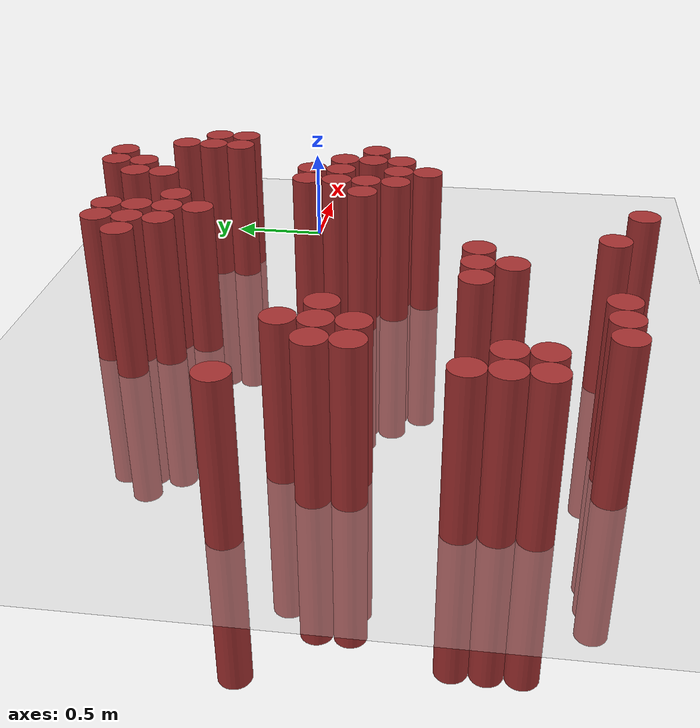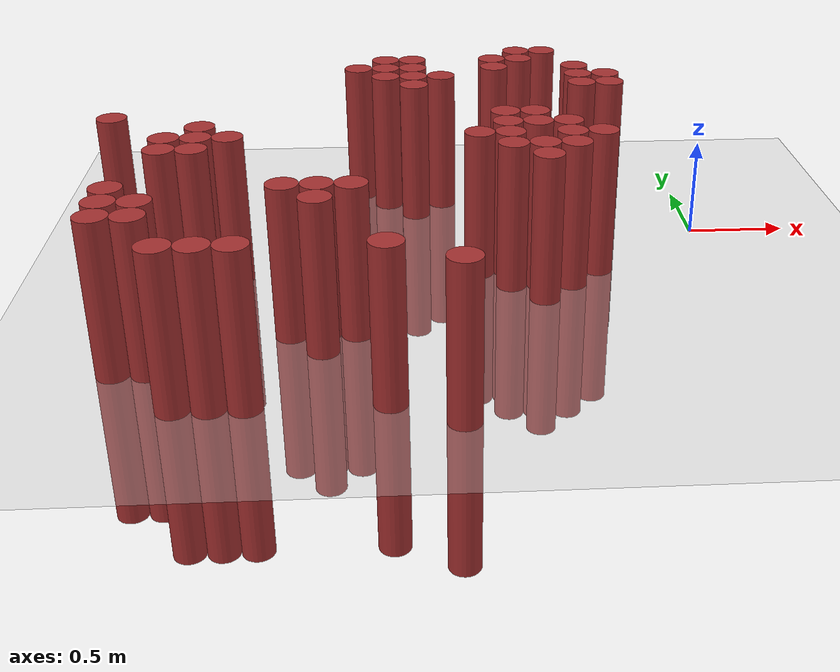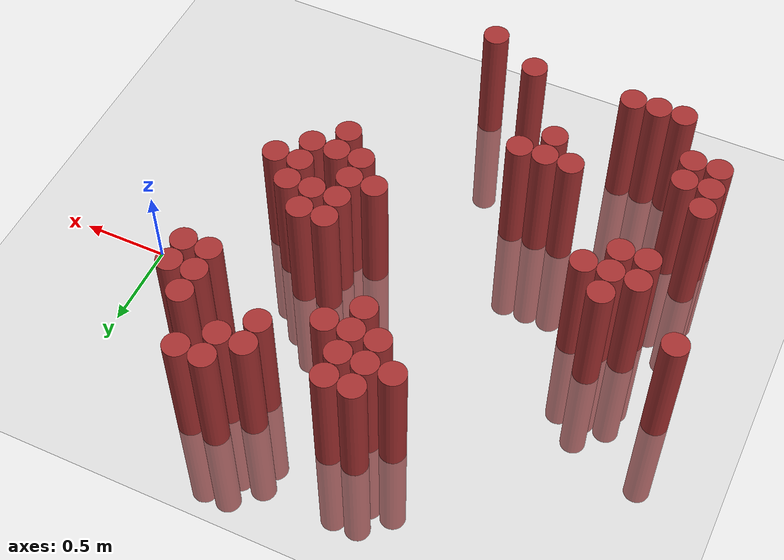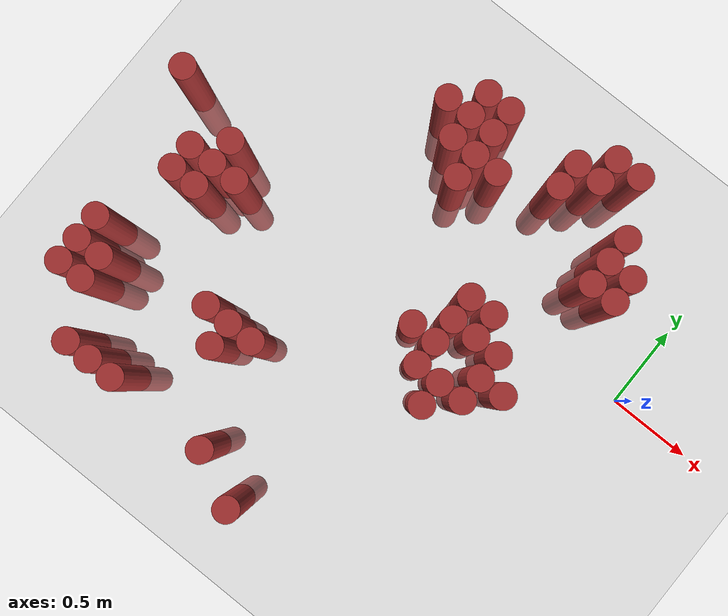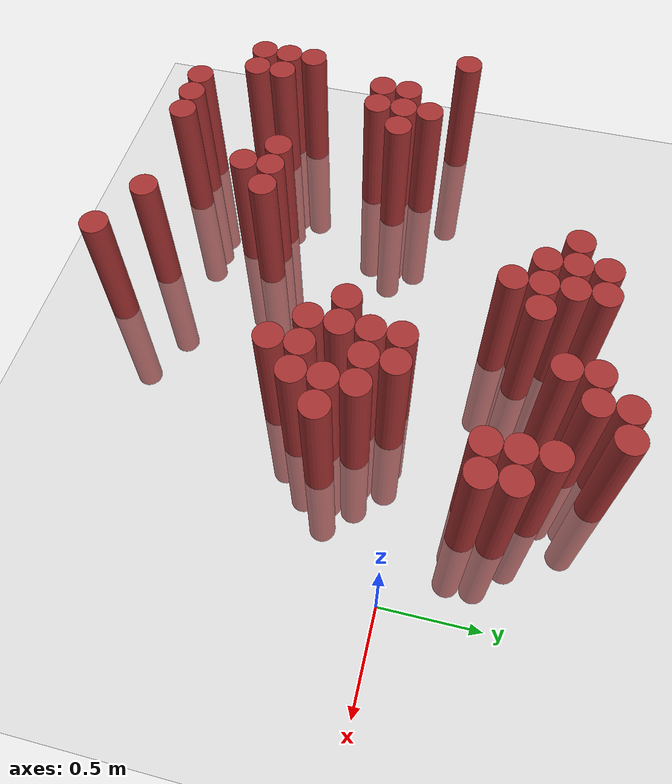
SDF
<sdf version="1.6">
 <world name="default">
  <model name="ground_plane">
   <static>1</static>
   <link name="link">
    <collision name="collision">
     <geometry><plane><normal>0 0 1</normal><size>100 100</size></plane></geometry>
     <surface><friction><ode><mu>100</mu><mu2>50</mu2></ode></friction></surface>
    </collision>
    <visual name="visual">
     <cast_shadows>0</cast_shadows>
     <geometry><plane><normal>0 0 1</normal><size>100 100</size></plane></geometry>
     <material>
      <script><uri>file://media/materials/scripts/gazebo.material</uri><name>Gazebo/Grey</name></script>
     </material>
    </visual>
   </link>
  </model>
  <model name="unit_cylinder_296">
   <static>1</static>
   <pose>-2.975000 -0.125000 0.000000 0.000000 0.000000 0.000000</pose>
   <link name="link">
    <inertial>
     <mass>1</mass>
     <inertia><ixx>0.145833</ixx><ixy>0</ixy><ixz>0</ixz><iyy>0.145833</iyy><iyz>0</iyz><izz>0.125</izz></inertia>
    </inertial>
    <collision name="collision">
     <geometry><cylinder><radius>0.075000</radius><length>1.5</length></cylinder></geometry>
    </collision>
    <visual name="visual">
     <geometry><cylinder><radius>0.075000</radius><length>1.5</length></cylinder></geometry>
     <material>
      <ambient>0.648000 0.192000 0.192000 1</ambient>
      <diffuse>0.648000 0.192000 0.192000 1</diffuse>
     </material>
     <material>
      <script><name>Gazebo/Grey</name><uri>file://media/materials/scripts/gazebo.material</uri></script>
     </material>
    </visual>
   </link>
  </model>
  <model name="unit_cylinder_299">
   <static>1</static>
   <pose>-2.825000 -1.325000 0.000000 0.000000 0.000000 0.000000</pose>
   <link name="link">
    <inertial>
     <mass>1</mass>
     <inertia><ixx>0.145833</ixx><ixy>0</ixy><ixz>0</ixz><iyy>0.145833</iyy><iyz>0</iyz><izz>0.125</izz></inertia>
    </inertial>
    <collision name="collision">
     <geometry><cylinder><radius>0.075000</radius><length>1.5</length></cylinder></geometry>
    </collision>
    <visual name="visual">
     <geometry><cylinder><radius>0.075000</radius><length>1.5</length></cylinder></geometry>
     <material>
      <ambient>0.648000 0.192000 0.192000 1</ambient>
      <diffuse>0.648000 0.192000 0.192000 1</diffuse>
     </material>
     <material>
      <script><name>Gazebo/Grey</name><uri>file://media/materials/scripts/gazebo.material</uri></script>
     </material>
    </visual>
   </link>
  </model>
  <model name="unit_cylinder_300">
   <static>1</static>
   <pose>-2.825000 -1.175000 0.000000 0.000000 0.000000 0.000000</pose>
   <link name="link">
    <inertial>
     <mass>1</mass>
     <inertia><ixx>0.145833</ixx><ixy>0</ixy><ixz>0</ixz><iyy>0.145833</iyy><iyz>0</iyz><izz>0.125</izz></inertia>
    </inertial>
    <collision name="collision">
     <geometry><cylinder><radius>0.075000</radius><length>1.5</length></cylinder></geometry>
    </collision>
    <visual name="visual">
     <geometry><cylinder><radius>0.075000</radius><length>1.5</length></cylinder></geometry>
     <material>
      <ambient>0.648000 0.192000 0.192000 1</ambient>
      <diffuse>0.648000 0.192000 0.192000 1</diffuse>
     </material>
     <material>
      <script><name>Gazebo/Grey</name><uri>file://media/materials/scripts/gazebo.material</uri></script>
     </material>
    </visual>
   </link>
  </model>
  <model name="unit_cylinder_301">
   <static>1</static>
   <pose>-2.825000 -1.025000 0.000000 0.000000 0.000000 0.000000</pose>
   <link name="link">
    <inertial>
     <mass>1</mass>
     <inertia><ixx>0.145833</ixx><ixy>0</ixy><ixz>0</ixz><iyy>0.145833</iyy><iyz>0</iyz><izz>0.125</izz></inertia>
    </inertial>
    <collision name="collision">
     <geometry><cylinder><radius>0.075000</radius><length>1.5</length></cylinder></geometry>
    </collision>
    <visual name="visual">
     <geometry><cylinder><radius>0.075000</radius><length>1.5</length></cylinder></geometry>
     <material>
      <ambient>0.648000 0.192000 0.192000 1</ambient>
      <diffuse>0.648000 0.192000 0.192000 1</diffuse>
     </material>
     <material>
      <script><name>Gazebo/Grey</name><uri>file://media/materials/scripts/gazebo.material</uri></script>
     </material>
    </visual>
   </link>
  </model>
  <model name="unit_cylinder_305">
   <static>1</static>
   <pose>-2.675000 -1.325000 0.000000 0.000000 0.000000 0.000000</pose>
   <link name="link">
    <inertial>
     <mass>1</mass>
     <inertia><ixx>0.145833</ixx><ixy>0</ixy><ixz>0</ixz><iyy>0.145833</iyy><iyz>0</iyz><izz>0.125</izz></inertia>
    </inertial>
    <collision name="collision">
     <geometry><cylinder><radius>0.075000</radius><length>1.5</length></cylinder></geometry>
    </collision>
    <visual name="visual">
     <geometry><cylinder><radius>0.075000</radius><length>1.5</length></cylinder></geometry>
     <material>
      <ambient>0.648000 0.192000 0.192000 1</ambient>
      <diffuse>0.648000 0.192000 0.192000 1</diffuse>
     </material>
     <material>
      <script><name>Gazebo/Grey</name><uri>file://media/materials/scripts/gazebo.material</uri></script>
     </material>
    </visual>
   </link>
  </model>
  <model name="unit_cylinder_306">
   <static>1</static>
   <pose>-2.675000 -1.175000 0.000000 0.000000 0.000000 0.000000</pose>
   <link name="link">
    <inertial>
     <mass>1</mass>
     <inertia><ixx>0.145833</ixx><ixy>0</ixy><ixz>0</ixz><iyy>0.145833</iyy><iyz>0</iyz><izz>0.125</izz></inertia>
    </inertial>
    <collision name="collision">
     <geometry><cylinder><radius>0.075000</radius><length>1.5</length></cylinder></geometry>
    </collision>
    <visual name="visual">
     <geometry><cylinder><radius>0.075000</radius><length>1.5</length></cylinder></geometry>
     <material>
      <ambient>0.648000 0.192000 0.192000 1</ambient>
      <diffuse>0.648000 0.192000 0.192000 1</diffuse>
     </material>
     <material>
      <script><name>Gazebo/Grey</name><uri>file://media/materials/scripts/gazebo.material</uri></script>
     </material>
    </visual>
   </link>
  </model>
  <model name="unit_cylinder_307">
   <static>1</static>
   <pose>-2.675000 -0.575000 0.000000 0.000000 0.000000 0.000000</pose>
   <link name="link">
    <inertial>
     <mass>1</mass>
     <inertia><ixx>0.145833</ixx><ixy>0</ixy><ixz>0</ixz><iyy>0.145833</iyy><iyz>0</iyz><izz>0.125</izz></inertia>
    </inertial>
    <collision name="collision">
     <geometry><cylinder><radius>0.075000</radius><length>1.5</length></cylinder></geometry>
    </collision>
    <visual name="visual">
     <geometry><cylinder><radius>0.075000</radius><length>1.5</length></cylinder></geometry>
     <material>
      <ambient>0.648000 0.192000 0.192000 1</ambient>
      <diffuse>0.648000 0.192000 0.192000 1</diffuse>
     </material>
     <material>
      <script><name>Gazebo/Grey</name><uri>file://media/materials/scripts/gazebo.material</uri></script>
     </material>
    </visual>
   </link>
  </model>
  <model name="unit_cylinder_308">
   <static>1</static>
   <pose>-2.675000 -0.425000 0.000000 0.000000 0.000000 0.000000</pose>
   <link name="link">
    <inertial>
     <mass>1</mass>
     <inertia><ixx>0.145833</ixx><ixy>0</ixy><ixz>0</ixz><iyy>0.145833</iyy><iyz>0</iyz><izz>0.125</izz></inertia>
    </inertial>
    <collision name="collision">
     <geometry><cylinder><radius>0.075000</radius><length>1.5</length></cylinder></geometry>
    </collision>
    <visual name="visual">
     <geometry><cylinder><radius>0.075000</radius><length>1.5</length></cylinder></geometry>
     <material>
      <ambient>0.648000 0.192000 0.192000 1</ambient>
      <diffuse>0.648000 0.192000 0.192000 1</diffuse>
     </material>
     <material>
      <script><name>Gazebo/Grey</name><uri>file://media/materials/scripts/gazebo.material</uri></script>
     </material>
    </visual>
   </link>
  </model>
  <model name="unit_cylinder_317">
   <static>1</static>
   <pose>-2.525000 -1.625000 0.000000 0.000000 0.000000 0.000000</pose>
   <link name="link">
    <inertial>
     <mass>1</mass>
     <inertia><ixx>0.145833</ixx><ixy>0</ixy><ixz>0</ixz><iyy>0.145833</iyy><iyz>0</iyz><izz>0.125</izz></inertia>
    </inertial>
    <collision name="collision">
     <geometry><cylinder><radius>0.075000</radius><length>1.5</length></cylinder></geometry>
    </collision>
    <visual name="visual">
     <geometry><cylinder><radius>0.075000</radius><length>1.5</length></cylinder></geometry>
     <material>
      <ambient>0.648000 0.192000 0.192000 1</ambient>
      <diffuse>0.648000 0.192000 0.192000 1</diffuse>
     </material>
     <material>
      <script><name>Gazebo/Grey</name><uri>file://media/materials/scripts/gazebo.material</uri></script>
     </material>
    </visual>
   </link>
  </model>
  <model name="unit_cylinder_318">
   <static>1</static>
   <pose>-2.525000 -0.575000 0.000000 0.000000 0.000000 0.000000</pose>
   <link name="link">
    <inertial>
     <mass>1</mass>
     <inertia><ixx>0.145833</ixx><ixy>0</ixy><ixz>0</ixz><iyy>0.145833</iyy><iyz>0</iyz><izz>0.125</izz></inertia>
    </inertial>
    <collision name="collision">
     <geometry><cylinder><radius>0.075000</radius><length>1.5</length></cylinder></geometry>
    </collision>
    <visual name="visual">
     <geometry><cylinder><radius>0.075000</radius><length>1.5</length></cylinder></geometry>
     <material>
      <ambient>0.648000 0.192000 0.192000 1</ambient>
      <diffuse>0.648000 0.192000 0.192000 1</diffuse>
     </material>
     <material>
      <script><name>Gazebo/Grey</name><uri>file://media/materials/scripts/gazebo.material</uri></script>
     </material>
    </visual>
   </link>
  </model>
  <model name="unit_cylinder_319">
   <static>1</static>
   <pose>-2.525000 -0.425000 0.000000 0.000000 0.000000 0.000000</pose>
   <link name="link">
    <inertial>
     <mass>1</mass>
     <inertia><ixx>0.145833</ixx><ixy>0</ixy><ixz>0</ixz><iyy>0.145833</iyy><iyz>0</iyz><izz>0.125</izz></inertia>
    </inertial>
    <collision name="collision">
     <geometry><cylinder><radius>0.075000</radius><length>1.5</length></cylinder></geometry>
    </collision>
    <visual name="visual">
     <geometry><cylinder><radius>0.075000</radius><length>1.5</length></cylinder></geometry>
     <material>
      <ambient>0.648000 0.192000 0.192000 1</ambient>
      <diffuse>0.648000 0.192000 0.192000 1</diffuse>
     </material>
     <material>
      <script><name>Gazebo/Grey</name><uri>file://media/materials/scripts/gazebo.material</uri></script>
     </material>
    </visual>
   </link>
  </model>
  <model name="unit_cylinder_320">
   <static>1</static>
   <pose>-2.525000 -0.275000 0.000000 0.000000 0.000000 0.000000</pose>
   <link name="link">
    <inertial>
     <mass>1</mass>
     <inertia><ixx>0.145833</ixx><ixy>0</ixy><ixz>0</ixz><iyy>0.145833</iyy><iyz>0</iyz><izz>0.125</izz></inertia>
    </inertial>
    <collision name="collision">
     <geometry><cylinder><radius>0.075000</radius><length>1.5</length></cylinder></geometry>
    </collision>
    <visual name="visual">
     <geometry><cylinder><radius>0.075000</radius><length>1.5</length></cylinder></geometry>
     <material>
      <ambient>0.648000 0.192000 0.192000 1</ambient>
      <diffuse>0.648000 0.192000 0.192000 1</diffuse>
     </material>
     <material>
      <script><name>Gazebo/Grey</name><uri>file://media/materials/scripts/gazebo.material</uri></script>
     </material>
    </visual>
   </link>
  </model>
  <model name="unit_cylinder_329">
   <static>1</static>
   <pose>-2.375000 -1.625000 0.000000 0.000000 0.000000 0.000000</pose>
   <link name="link">
    <inertial>
     <mass>1</mass>
     <inertia><ixx>0.145833</ixx><ixy>0</ixy><ixz>0</ixz><iyy>0.145833</iyy><iyz>0</iyz><izz>0.125</izz></inertia>
    </inertial>
    <collision name="collision">
     <geometry><cylinder><radius>0.075000</radius><length>1.5</length></cylinder></geometry>
    </collision>
    <visual name="visual">
     <geometry><cylinder><radius>0.075000</radius><length>1.5</length></cylinder></geometry>
     <material>
      <ambient>0.648000 0.192000 0.192000 1</ambient>
      <diffuse>0.648000 0.192000 0.192000 1</diffuse>
     </material>
     <material>
      <script><name>Gazebo/Grey</name><uri>file://media/materials/scripts/gazebo.material</uri></script>
     </material>
    </visual>
   </link>
  </model>
  <model name="unit_cylinder_330">
   <static>1</static>
   <pose>-2.375000 -0.425000 0.000000 0.000000 0.000000 0.000000</pose>
   <link name="link">
    <inertial>
     <mass>1</mass>
     <inertia><ixx>0.145833</ixx><ixy>0</ixy><ixz>0</ixz><iyy>0.145833</iyy><iyz>0</iyz><izz>0.125</izz></inertia>
    </inertial>
    <collision name="collision">
     <geometry><cylinder><radius>0.075000</radius><length>1.5</length></cylinder></geometry>
    </collision>
    <visual name="visual">
     <geometry><cylinder><radius>0.075000</radius><length>1.5</length></cylinder></geometry>
     <material>
      <ambient>0.648000 0.192000 0.192000 1</ambient>
      <diffuse>0.648000 0.192000 0.192000 1</diffuse>
     </material>
     <material>
      <script><name>Gazebo/Grey</name><uri>file://media/materials/scripts/gazebo.material</uri></script>
     </material>
    </visual>
   </link>
  </model>
  <model name="unit_cylinder_338">
   <static>1</static>
   <pose>-2.225000 -1.625000 0.000000 0.000000 0.000000 0.000000</pose>
   <link name="link">
    <inertial>
     <mass>1</mass>
     <inertia><ixx>0.145833</ixx><ixy>0</ixy><ixz>0</ixz><iyy>0.145833</iyy><iyz>0</iyz><izz>0.125</izz></inertia>
    </inertial>
    <collision name="collision">
     <geometry><cylinder><radius>0.075000</radius><length>1.5</length></cylinder></geometry>
    </collision>
    <visual name="visual">
     <geometry><cylinder><radius>0.075000</radius><length>1.5</length></cylinder></geometry>
     <material>
      <ambient>0.648000 0.192000 0.192000 1</ambient>
      <diffuse>0.648000 0.192000 0.192000 1</diffuse>
     </material>
     <material>
      <script><name>Gazebo/Grey</name><uri>file://media/materials/scripts/gazebo.material</uri></script>
     </material>
    </visual>
   </link>
  </model>
  <model name="unit_cylinder_341">
   <static>1</static>
   <pose>-2.075000 -1.025000 0.000000 0.000000 0.000000 0.000000</pose>
   <link name="link">
    <inertial>
     <mass>1</mass>
     <inertia><ixx>0.145833</ixx><ixy>0</ixy><ixz>0</ixz><iyy>0.145833</iyy><iyz>0</iyz><izz>0.125</izz></inertia>
    </inertial>
    <collision name="collision">
     <geometry><cylinder><radius>0.075000</radius><length>1.5</length></cylinder></geometry>
    </collision>
    <visual name="visual">
     <geometry><cylinder><radius>0.075000</radius><length>1.5</length></cylinder></geometry>
     <material>
      <ambient>0.648000 0.192000 0.192000 1</ambient>
      <diffuse>0.648000 0.192000 0.192000 1</diffuse>
     </material>
     <material>
      <script><name>Gazebo/Grey</name><uri>file://media/materials/scripts/gazebo.material</uri></script>
     </material>
    </visual>
   </link>
  </model>
  <model name="unit_cylinder_343">
   <static>1</static>
   <pose>-1.925000 -1.175000 0.000000 0.000000 0.000000 0.000000</pose>
   <link name="link">
    <inertial>
     <mass>1</mass>
     <inertia><ixx>0.145833</ixx><ixy>0</ixy><ixz>0</ixz><iyy>0.145833</iyy><iyz>0</iyz><izz>0.125</izz></inertia>
    </inertial>
    <collision name="collision">
     <geometry><cylinder><radius>0.075000</radius><length>1.5</length></cylinder></geometry>
    </collision>
    <visual name="visual">
     <geometry><cylinder><radius>0.075000</radius><length>1.5</length></cylinder></geometry>
     <material>
      <ambient>0.648000 0.192000 0.192000 1</ambient>
      <diffuse>0.648000 0.192000 0.192000 1</diffuse>
     </material>
     <material>
      <script><name>Gazebo/Grey</name><uri>file://media/materials/scripts/gazebo.material</uri></script>
     </material>
    </visual>
   </link>
  </model>
  <model name="unit_cylinder_344">
   <static>1</static>
   <pose>-1.925000 -1.025000 0.000000 0.000000 0.000000 0.000000</pose>
   <link name="link">
    <inertial>
     <mass>1</mass>
     <inertia><ixx>0.145833</ixx><ixy>0</ixy><ixz>0</ixz><iyy>0.145833</iyy><iyz>0</iyz><izz>0.125</izz></inertia>
    </inertial>
    <collision name="collision">
     <geometry><cylinder><radius>0.075000</radius><length>1.5</length></cylinder></geometry>
    </collision>
    <visual name="visual">
     <geometry><cylinder><radius>0.075000</radius><length>1.5</length></cylinder></geometry>
     <material>
      <ambient>0.648000 0.192000 0.192000 1</ambient>
      <diffuse>0.648000 0.192000 0.192000 1</diffuse>
     </material>
     <material>
      <script><name>Gazebo/Grey</name><uri>file://media/materials/scripts/gazebo.material</uri></script>
     </material>
    </visual>
   </link>
  </model>
  <model name="unit_cylinder_347">
   <static>1</static>
   <pose>-1.775000 -1.025000 0.000000 0.000000 0.000000 0.000000</pose>
   <link name="link">
    <inertial>
     <mass>1</mass>
     <inertia><ixx>0.145833</ixx><ixy>0</ixy><ixz>0</ixz><iyy>0.145833</iyy><iyz>0</iyz><izz>0.125</izz></inertia>
    </inertial>
    <collision name="collision">
     <geometry><cylinder><radius>0.075000</radius><length>1.5</length></cylinder></geometry>
    </collision>
    <visual name="visual">
     <geometry><cylinder><radius>0.075000</radius><length>1.5</length></cylinder></geometry>
     <material>
      <ambient>0.648000 0.192000 0.192000 1</ambient>
      <diffuse>0.648000 0.192000 0.192000 1</diffuse>
     </material>
     <material>
      <script><name>Gazebo/Grey</name><uri>file://media/materials/scripts/gazebo.material</uri></script>
     </material>
    </visual>
   </link>
  </model>
  <model name="unit_cylinder_348">
   <static>1</static>
   <pose>-1.775000 0.625000 0.000000 0.000000 0.000000 0.000000</pose>
   <link name="link">
    <inertial>
     <mass>1</mass>
     <inertia><ixx>0.145833</ixx><ixy>0</ixy><ixz>0</ixz><iyy>0.145833</iyy><iyz>0</iyz><izz>0.125</izz></inertia>
    </inertial>
    <collision name="collision">
     <geometry><cylinder><radius>0.075000</radius><length>1.5</length></cylinder></geometry>
    </collision>
    <visual name="visual">
     <geometry><cylinder><radius>0.075000</radius><length>1.5</length></cylinder></geometry>
     <material>
      <ambient>0.648000 0.192000 0.192000 1</ambient>
      <diffuse>0.648000 0.192000 0.192000 1</diffuse>
     </material>
     <material>
      <script><name>Gazebo/Grey</name><uri>file://media/materials/scripts/gazebo.material</uri></script>
     </material>
    </visual>
   </link>
  </model>
  <model name="unit_cylinder_351">
   <static>1</static>
   <pose>-1.625000 -1.625000 0.000000 0.000000 0.000000 0.000000</pose>
   <link name="link">
    <inertial>
     <mass>1</mass>
     <inertia><ixx>0.145833</ixx><ixy>0</ixy><ixz>0</ixz><iyy>0.145833</iyy><iyz>0</iyz><izz>0.125</izz></inertia>
    </inertial>
    <collision name="collision">
     <geometry><cylinder><radius>0.075000</radius><length>1.5</length></cylinder></geometry>
    </collision>
    <visual name="visual">
     <geometry><cylinder><radius>0.075000</radius><length>1.5</length></cylinder></geometry>
     <material>
      <ambient>0.648000 0.192000 0.192000 1</ambient>
      <diffuse>0.648000 0.192000 0.192000 1</diffuse>
     </material>
     <material>
      <script><name>Gazebo/Grey</name><uri>file://media/materials/scripts/gazebo.material</uri></script>
     </material>
    </visual>
   </link>
  </model>
  <model name="unit_cylinder_352">
   <static>1</static>
   <pose>-1.625000 0.475000 0.000000 0.000000 0.000000 0.000000</pose>
   <link name="link">
    <inertial>
     <mass>1</mass>
     <inertia><ixx>0.145833</ixx><ixy>0</ixy><ixz>0</ixz><iyy>0.145833</iyy><iyz>0</iyz><izz>0.125</izz></inertia>
    </inertial>
    <collision name="collision">
     <geometry><cylinder><radius>0.075000</radius><length>1.5</length></cylinder></geometry>
    </collision>
    <visual name="visual">
     <geometry><cylinder><radius>0.075000</radius><length>1.5</length></cylinder></geometry>
     <material>
      <ambient>0.648000 0.192000 0.192000 1</ambient>
      <diffuse>0.648000 0.192000 0.192000 1</diffuse>
     </material>
     <material>
      <script><name>Gazebo/Grey</name><uri>file://media/materials/scripts/gazebo.material</uri></script>
     </material>
    </visual>
   </link>
  </model>
  <model name="unit_cylinder_353">
   <static>1</static>
   <pose>-1.625000 0.625000 0.000000 0.000000 0.000000 0.000000</pose>
   <link name="link">
    <inertial>
     <mass>1</mass>
     <inertia><ixx>0.145833</ixx><ixy>0</ixy><ixz>0</ixz><iyy>0.145833</iyy><iyz>0</iyz><izz>0.125</izz></inertia>
    </inertial>
    <collision name="collision">
     <geometry><cylinder><radius>0.075000</radius><length>1.5</length></cylinder></geometry>
    </collision>
    <visual name="visual">
     <geometry><cylinder><radius>0.075000</radius><length>1.5</length></cylinder></geometry>
     <material>
      <ambient>0.648000 0.192000 0.192000 1</ambient>
      <diffuse>0.648000 0.192000 0.192000 1</diffuse>
     </material>
     <material>
      <script><name>Gazebo/Grey</name><uri>file://media/materials/scripts/gazebo.material</uri></script>
     </material>
    </visual>
   </link>
  </model>
  <model name="unit_cylinder_354">
   <static>1</static>
   <pose>-1.625000 0.775000 0.000000 0.000000 0.000000 0.000000</pose>
   <link name="link">
    <inertial>
     <mass>1</mass>
     <inertia><ixx>0.145833</ixx><ixy>0</ixy><ixz>0</ixz><iyy>0.145833</iyy><iyz>0</iyz><izz>0.125</izz></inertia>
    </inertial>
    <collision name="collision">
     <geometry><cylinder><radius>0.075000</radius><length>1.5</length></cylinder></geometry>
    </collision>
    <visual name="visual">
     <geometry><cylinder><radius>0.075000</radius><length>1.5</length></cylinder></geometry>
     <material>
      <ambient>0.648000 0.192000 0.192000 1</ambient>
      <diffuse>0.648000 0.192000 0.192000 1</diffuse>
     </material>
     <material>
      <script><name>Gazebo/Grey</name><uri>file://media/materials/scripts/gazebo.material</uri></script>
     </material>
    </visual>
   </link>
  </model>
  <model name="unit_cylinder_361">
   <static>1</static>
   <pose>-1.475000 0.325000 0.000000 0.000000 0.000000 0.000000</pose>
   <link name="link">
    <inertial>
     <mass>1</mass>
     <inertia><ixx>0.145833</ixx><ixy>0</ixy><ixz>0</ixz><iyy>0.145833</iyy><iyz>0</iyz><izz>0.125</izz></inertia>
    </inertial>
    <collision name="collision">
     <geometry><cylinder><radius>0.075000</radius><length>1.5</length></cylinder></geometry>
    </collision>
    <visual name="visual">
     <geometry><cylinder><radius>0.075000</radius><length>1.5</length></cylinder></geometry>
     <material>
      <ambient>0.648000 0.192000 0.192000 1</ambient>
      <diffuse>0.648000 0.192000 0.192000 1</diffuse>
     </material>
     <material>
      <script><name>Gazebo/Grey</name><uri>file://media/materials/scripts/gazebo.material</uri></script>
     </material>
    </visual>
   </link>
  </model>
  <model name="unit_cylinder_362">
   <static>1</static>
   <pose>-1.475000 0.475000 0.000000 0.000000 0.000000 0.000000</pose>
   <link name="link">
    <inertial>
     <mass>1</mass>
     <inertia><ixx>0.145833</ixx><ixy>0</ixy><ixz>0</ixz><iyy>0.145833</iyy><iyz>0</iyz><izz>0.125</izz></inertia>
    </inertial>
    <collision name="collision">
     <geometry><cylinder><radius>0.075000</radius><length>1.5</length></cylinder></geometry>
    </collision>
    <visual name="visual">
     <geometry><cylinder><radius>0.075000</radius><length>1.5</length></cylinder></geometry>
     <material>
      <ambient>0.648000 0.192000 0.192000 1</ambient>
      <diffuse>0.648000 0.192000 0.192000 1</diffuse>
     </material>
     <material>
      <script><name>Gazebo/Grey</name><uri>file://media/materials/scripts/gazebo.material</uri></script>
     </material>
    </visual>
   </link>
  </model>
  <model name="unit_cylinder_363">
   <static>1</static>
   <pose>-1.475000 0.625000 0.000000 0.000000 0.000000 0.000000</pose>
   <link name="link">
    <inertial>
     <mass>1</mass>
     <inertia><ixx>0.145833</ixx><ixy>0</ixy><ixz>0</ixz><iyy>0.145833</iyy><iyz>0</iyz><izz>0.125</izz></inertia>
    </inertial>
    <collision name="collision">
     <geometry><cylinder><radius>0.075000</radius><length>1.5</length></cylinder></geometry>
    </collision>
    <visual name="visual">
     <geometry><cylinder><radius>0.075000</radius><length>1.5</length></cylinder></geometry>
     <material>
      <ambient>0.648000 0.192000 0.192000 1</ambient>
      <diffuse>0.648000 0.192000 0.192000 1</diffuse>
     </material>
     <material>
      <script><name>Gazebo/Grey</name><uri>file://media/materials/scripts/gazebo.material</uri></script>
     </material>
    </visual>
   </link>
  </model>
  <model name="unit_cylinder_364">
   <static>1</static>
   <pose>-1.475000 0.775000 0.000000 0.000000 0.000000 0.000000</pose>
   <link name="link">
    <inertial>
     <mass>1</mass>
     <inertia><ixx>0.145833</ixx><ixy>0</ixy><ixz>0</ixz><iyy>0.145833</iyy><iyz>0</iyz><izz>0.125</izz></inertia>
    </inertial>
    <collision name="collision">
     <geometry><cylinder><radius>0.075000</radius><length>1.5</length></cylinder></geometry>
    </collision>
    <visual name="visual">
     <geometry><cylinder><radius>0.075000</radius><length>1.5</length></cylinder></geometry>
     <material>
      <ambient>0.648000 0.192000 0.192000 1</ambient>
      <diffuse>0.648000 0.192000 0.192000 1</diffuse>
     </material>
     <material>
      <script><name>Gazebo/Grey</name><uri>file://media/materials/scripts/gazebo.material</uri></script>
     </material>
    </visual>
   </link>
  </model>
  <model name="unit_cylinder_372">
   <static>1</static>
   <pose>-1.325000 -1.775000 0.000000 0.000000 0.000000 0.000000</pose>
   <link name="link">
    <inertial>
     <mass>1</mass>
     <inertia><ixx>0.145833</ixx><ixy>0</ixy><ixz>0</ixz><iyy>0.145833</iyy><iyz>0</iyz><izz>0.125</izz></inertia>
    </inertial>
    <collision name="collision">
     <geometry><cylinder><radius>0.075000</radius><length>1.5</length></cylinder></geometry>
    </collision>
    <visual name="visual">
     <geometry><cylinder><radius>0.075000</radius><length>1.5</length></cylinder></geometry>
     <material>
      <ambient>0.648000 0.192000 0.192000 1</ambient>
      <diffuse>0.648000 0.192000 0.192000 1</diffuse>
     </material>
     <material>
      <script><name>Gazebo/Grey</name><uri>file://media/materials/scripts/gazebo.material</uri></script>
     </material>
    </visual>
   </link>
  </model>
  <model name="unit_cylinder_373">
   <static>1</static>
   <pose>-1.325000 0.475000 0.000000 0.000000 0.000000 0.000000</pose>
   <link name="link">
    <inertial>
     <mass>1</mass>
     <inertia><ixx>0.145833</ixx><ixy>0</ixy><ixz>0</ixz><iyy>0.145833</iyy><iyz>0</iyz><izz>0.125</izz></inertia>
    </inertial>
    <collision name="collision">
     <geometry><cylinder><radius>0.075000</radius><length>1.5</length></cylinder></geometry>
    </collision>
    <visual name="visual">
     <geometry><cylinder><radius>0.075000</radius><length>1.5</length></cylinder></geometry>
     <material>
      <ambient>0.648000 0.192000 0.192000 1</ambient>
      <diffuse>0.648000 0.192000 0.192000 1</diffuse>
     </material>
     <material>
      <script><name>Gazebo/Grey</name><uri>file://media/materials/scripts/gazebo.material</uri></script>
     </material>
    </visual>
   </link>
  </model>
  <model name="unit_cylinder_378">
   <static>1</static>
   <pose>-1.175000 -0.425000 0.000000 0.000000 0.000000 0.000000</pose>
   <link name="link">
    <inertial>
     <mass>1</mass>
     <inertia><ixx>0.145833</ixx><ixy>0</ixy><ixz>0</ixz><iyy>0.145833</iyy><iyz>0</iyz><izz>0.125</izz></inertia>
    </inertial>
    <collision name="collision">
     <geometry><cylinder><radius>0.075000</radius><length>1.5</length></cylinder></geometry>
    </collision>
    <visual name="visual">
     <geometry><cylinder><radius>0.075000</radius><length>1.5</length></cylinder></geometry>
     <material>
      <ambient>0.648000 0.192000 0.192000 1</ambient>
      <diffuse>0.648000 0.192000 0.192000 1</diffuse>
     </material>
     <material>
      <script><name>Gazebo/Grey</name><uri>file://media/materials/scripts/gazebo.material</uri></script>
     </material>
    </visual>
   </link>
  </model>
  <model name="unit_cylinder_381">
   <static>1</static>
   <pose>-1.025000 -0.575000 0.000000 0.000000 0.000000 0.000000</pose>
   <link name="link">
    <inertial>
     <mass>1</mass>
     <inertia><ixx>0.145833</ixx><ixy>0</ixy><ixz>0</ixz><iyy>0.145833</iyy><iyz>0</iyz><izz>0.125</izz></inertia>
    </inertial>
    <collision name="collision">
     <geometry><cylinder><radius>0.075000</radius><length>1.5</length></cylinder></geometry>
    </collision>
    <visual name="visual">
     <geometry><cylinder><radius>0.075000</radius><length>1.5</length></cylinder></geometry>
     <material>
      <ambient>0.648000 0.192000 0.192000 1</ambient>
      <diffuse>0.648000 0.192000 0.192000 1</diffuse>
     </material>
     <material>
      <script><name>Gazebo/Grey</name><uri>file://media/materials/scripts/gazebo.material</uri></script>
     </material>
    </visual>
   </link>
  </model>
  <model name="unit_cylinder_382">
   <static>1</static>
   <pose>-1.025000 -0.425000 0.000000 0.000000 0.000000 0.000000</pose>
   <link name="link">
    <inertial>
     <mass>1</mass>
     <inertia><ixx>0.145833</ixx><ixy>0</ixy><ixz>0</ixz><iyy>0.145833</iyy><iyz>0</iyz><izz>0.125</izz></inertia>
    </inertial>
    <collision name="collision">
     <geometry><cylinder><radius>0.075000</radius><length>1.5</length></cylinder></geometry>
    </collision>
    <visual name="visual">
     <geometry><cylinder><radius>0.075000</radius><length>1.5</length></cylinder></geometry>
     <material>
      <ambient>0.648000 0.192000 0.192000 1</ambient>
      <diffuse>0.648000 0.192000 0.192000 1</diffuse>
     </material>
     <material>
      <script><name>Gazebo/Grey</name><uri>file://media/materials/scripts/gazebo.material</uri></script>
     </material>
    </visual>
   </link>
  </model>
  <model name="unit_cylinder_383">
   <static>1</static>
   <pose>-1.025000 -0.275000 0.000000 0.000000 0.000000 0.000000</pose>
   <link name="link">
    <inertial>
     <mass>1</mass>
     <inertia><ixx>0.145833</ixx><ixy>0</ixy><ixz>0</ixz><iyy>0.145833</iyy><iyz>0</iyz><izz>0.125</izz></inertia>
    </inertial>
    <collision name="collision">
     <geometry><cylinder><radius>0.075000</radius><length>1.5</length></cylinder></geometry>
    </collision>
    <visual name="visual">
     <geometry><cylinder><radius>0.075000</radius><length>1.5</length></cylinder></geometry>
     <material>
      <ambient>0.648000 0.192000 0.192000 1</ambient>
      <diffuse>0.648000 0.192000 0.192000 1</diffuse>
     </material>
     <material>
      <script><name>Gazebo/Grey</name><uri>file://media/materials/scripts/gazebo.material</uri></script>
     </material>
    </visual>
   </link>
  </model>
  <model name="unit_cylinder_384">
   <static>1</static>
   <pose>-1.025000 -0.125000 0.000000 0.000000 0.000000 0.000000</pose>
   <link name="link">
    <inertial>
     <mass>1</mass>
     <inertia><ixx>0.145833</ixx><ixy>0</ixy><ixz>0</ixz><iyy>0.145833</iyy><iyz>0</iyz><izz>0.125</izz></inertia>
    </inertial>
    <collision name="collision">
     <geometry><cylinder><radius>0.075000</radius><length>1.5</length></cylinder></geometry>
    </collision>
    <visual name="visual">
     <geometry><cylinder><radius>0.075000</radius><length>1.5</length></cylinder></geometry>
     <material>
      <ambient>0.648000 0.192000 0.192000 1</ambient>
      <diffuse>0.648000 0.192000 0.192000 1</diffuse>
     </material>
     <material>
      <script><name>Gazebo/Grey</name><uri>file://media/materials/scripts/gazebo.material</uri></script>
     </material>
    </visual>
   </link>
  </model>
  <model name="unit_cylinder_385">
   <static>1</static>
   <pose>-1.025000 0.625000 0.000000 0.000000 0.000000 0.000000</pose>
   <link name="link">
    <inertial>
     <mass>1</mass>
     <inertia><ixx>0.145833</ixx><ixy>0</ixy><ixz>0</ixz><iyy>0.145833</iyy><iyz>0</iyz><izz>0.125</izz></inertia>
    </inertial>
    <collision name="collision">
     <geometry><cylinder><radius>0.075000</radius><length>1.5</length></cylinder></geometry>
    </collision>
    <visual name="visual">
     <geometry><cylinder><radius>0.075000</radius><length>1.5</length></cylinder></geometry>
     <material>
      <ambient>0.648000 0.192000 0.192000 1</ambient>
      <diffuse>0.648000 0.192000 0.192000 1</diffuse>
     </material>
     <material>
      <script><name>Gazebo/Grey</name><uri>file://media/materials/scripts/gazebo.material</uri></script>
     </material>
    </visual>
   </link>
  </model>
  <model name="unit_cylinder_386">
   <static>1</static>
   <pose>-1.025000 0.775000 0.000000 0.000000 0.000000 0.000000</pose>
   <link name="link">
    <inertial>
     <mass>1</mass>
     <inertia><ixx>0.145833</ixx><ixy>0</ixy><ixz>0</ixz><iyy>0.145833</iyy><iyz>0</iyz><izz>0.125</izz></inertia>
    </inertial>
    <collision name="collision">
     <geometry><cylinder><radius>0.075000</radius><length>1.5</length></cylinder></geometry>
    </collision>
    <visual name="visual">
     <geometry><cylinder><radius>0.075000</radius><length>1.5</length></cylinder></geometry>
     <material>
      <ambient>0.648000 0.192000 0.192000 1</ambient>
      <diffuse>0.648000 0.192000 0.192000 1</diffuse>
     </material>
     <material>
      <script><name>Gazebo/Grey</name><uri>file://media/materials/scripts/gazebo.material</uri></script>
     </material>
    </visual>
   </link>
  </model>
  <model name="unit_cylinder_389">
   <static>1</static>
   <pose>-0.875000 -0.725000 0.000000 0.000000 0.000000 0.000000</pose>
   <link name="link">
    <inertial>
     <mass>1</mass>
     <inertia><ixx>0.145833</ixx><ixy>0</ixy><ixz>0</ixz><iyy>0.145833</iyy><iyz>0</iyz><izz>0.125</izz></inertia>
    </inertial>
    <collision name="collision">
     <geometry><cylinder><radius>0.075000</radius><length>1.5</length></cylinder></geometry>
    </collision>
    <visual name="visual">
     <geometry><cylinder><radius>0.075000</radius><length>1.5</length></cylinder></geometry>
     <material>
      <ambient>0.648000 0.192000 0.192000 1</ambient>
      <diffuse>0.648000 0.192000 0.192000 1</diffuse>
     </material>
     <material>
      <script><name>Gazebo/Grey</name><uri>file://media/materials/scripts/gazebo.material</uri></script>
     </material>
    </visual>
   </link>
  </model>
  <model name="unit_cylinder_390">
   <static>1</static>
   <pose>-0.875000 -0.575000 0.000000 0.000000 0.000000 0.000000</pose>
   <link name="link">
    <inertial>
     <mass>1</mass>
     <inertia><ixx>0.145833</ixx><ixy>0</ixy><ixz>0</ixz><iyy>0.145833</iyy><iyz>0</iyz><izz>0.125</izz></inertia>
    </inertial>
    <collision name="collision">
     <geometry><cylinder><radius>0.075000</radius><length>1.5</length></cylinder></geometry>
    </collision>
    <visual name="visual">
     <geometry><cylinder><radius>0.075000</radius><length>1.5</length></cylinder></geometry>
     <material>
      <ambient>0.648000 0.192000 0.192000 1</ambient>
      <diffuse>0.648000 0.192000 0.192000 1</diffuse>
     </material>
     <material>
      <script><name>Gazebo/Grey</name><uri>file://media/materials/scripts/gazebo.material</uri></script>
     </material>
    </visual>
   </link>
  </model>
  <model name="unit_cylinder_391">
   <static>1</static>
   <pose>-0.875000 -0.275000 0.000000 0.000000 0.000000 0.000000</pose>
   <link name="link">
    <inertial>
     <mass>1</mass>
     <inertia><ixx>0.145833</ixx><ixy>0</ixy><ixz>0</ixz><iyy>0.145833</iyy><iyz>0</iyz><izz>0.125</izz></inertia>
    </inertial>
    <collision name="collision">
     <geometry><cylinder><radius>0.075000</radius><length>1.5</length></cylinder></geometry>
    </collision>
    <visual name="visual">
     <geometry><cylinder><radius>0.075000</radius><length>1.5</length></cylinder></geometry>
     <material>
      <ambient>0.648000 0.192000 0.192000 1</ambient>
      <diffuse>0.648000 0.192000 0.192000 1</diffuse>
     </material>
     <material>
      <script><name>Gazebo/Grey</name><uri>file://media/materials/scripts/gazebo.material</uri></script>
     </material>
    </visual>
   </link>
  </model>
  <model name="unit_cylinder_392">
   <static>1</static>
   <pose>-0.875000 -0.125000 0.000000 0.000000 0.000000 0.000000</pose>
   <link name="link">
    <inertial>
     <mass>1</mass>
     <inertia><ixx>0.145833</ixx><ixy>0</ixy><ixz>0</ixz><iyy>0.145833</iyy><iyz>0</iyz><izz>0.125</izz></inertia>
    </inertial>
    <collision name="collision">
     <geometry><cylinder><radius>0.075000</radius><length>1.5</length></cylinder></geometry>
    </collision>
    <visual name="visual">
     <geometry><cylinder><radius>0.075000</radius><length>1.5</length></cylinder></geometry>
     <material>
      <ambient>0.648000 0.192000 0.192000 1</ambient>
      <diffuse>0.648000 0.192000 0.192000 1</diffuse>
     </material>
     <material>
      <script><name>Gazebo/Grey</name><uri>file://media/materials/scripts/gazebo.material</uri></script>
     </material>
    </visual>
   </link>
  </model>
  <model name="unit_cylinder_393">
   <static>1</static>
   <pose>-0.875000 0.775000 0.000000 0.000000 0.000000 0.000000</pose>
   <link name="link">
    <inertial>
     <mass>1</mass>
     <inertia><ixx>0.145833</ixx><ixy>0</ixy><ixz>0</ixz><iyy>0.145833</iyy><iyz>0</iyz><izz>0.125</izz></inertia>
    </inertial>
    <collision name="collision">
     <geometry><cylinder><radius>0.075000</radius><length>1.5</length></cylinder></geometry>
    </collision>
    <visual name="visual">
     <geometry><cylinder><radius>0.075000</radius><length>1.5</length></cylinder></geometry>
     <material>
      <ambient>0.648000 0.192000 0.192000 1</ambient>
      <diffuse>0.648000 0.192000 0.192000 1</diffuse>
     </material>
     <material>
      <script><name>Gazebo/Grey</name><uri>file://media/materials/scripts/gazebo.material</uri></script>
     </material>
    </visual>
   </link>
  </model>
  <model name="unit_cylinder_394">
   <static>1</static>
   <pose>-0.875000 0.925000 0.000000 0.000000 0.000000 0.000000</pose>
   <link name="link">
    <inertial>
     <mass>1</mass>
     <inertia><ixx>0.145833</ixx><ixy>0</ixy><ixz>0</ixz><iyy>0.145833</iyy><iyz>0</iyz><izz>0.125</izz></inertia>
    </inertial>
    <collision name="collision">
     <geometry><cylinder><radius>0.075000</radius><length>1.5</length></cylinder></geometry>
    </collision>
    <visual name="visual">
     <geometry><cylinder><radius>0.075000</radius><length>1.5</length></cylinder></geometry>
     <material>
      <ambient>0.648000 0.192000 0.192000 1</ambient>
      <diffuse>0.648000 0.192000 0.192000 1</diffuse>
     </material>
     <material>
      <script><name>Gazebo/Grey</name><uri>file://media/materials/scripts/gazebo.material</uri></script>
     </material>
    </visual>
   </link>
  </model>
  <model name="unit_cylinder_404">
   <static>1</static>
   <pose>-0.725000 -0.575000 0.000000 0.000000 0.000000 0.000000</pose>
   <link name="link">
    <inertial>
     <mass>1</mass>
     <inertia><ixx>0.145833</ixx><ixy>0</ixy><ixz>0</ixz><iyy>0.145833</iyy><iyz>0</iyz><izz>0.125</izz></inertia>
    </inertial>
    <collision name="collision">
     <geometry><cylinder><radius>0.075000</radius><length>1.5</length></cylinder></geometry>
    </collision>
    <visual name="visual">
     <geometry><cylinder><radius>0.075000</radius><length>1.5</length></cylinder></geometry>
     <material>
      <ambient>0.648000 0.192000 0.192000 1</ambient>
      <diffuse>0.648000 0.192000 0.192000 1</diffuse>
     </material>
     <material>
      <script><name>Gazebo/Grey</name><uri>file://media/materials/scripts/gazebo.material</uri></script>
     </material>
    </visual>
   </link>
  </model>
  <model name="unit_cylinder_405">
   <static>1</static>
   <pose>-0.725000 -0.425000 0.000000 0.000000 0.000000 0.000000</pose>
   <link name="link">
    <inertial>
     <mass>1</mass>
     <inertia><ixx>0.145833</ixx><ixy>0</ixy><ixz>0</ixz><iyy>0.145833</iyy><iyz>0</iyz><izz>0.125</izz></inertia>
    </inertial>
    <collision name="collision">
     <geometry><cylinder><radius>0.075000</radius><length>1.5</length></cylinder></geometry>
    </collision>
    <visual name="visual">
     <geometry><cylinder><radius>0.075000</radius><length>1.5</length></cylinder></geometry>
     <material>
      <ambient>0.648000 0.192000 0.192000 1</ambient>
      <diffuse>0.648000 0.192000 0.192000 1</diffuse>
     </material>
     <material>
      <script><name>Gazebo/Grey</name><uri>file://media/materials/scripts/gazebo.material</uri></script>
     </material>
    </visual>
   </link>
  </model>
  <model name="unit_cylinder_406">
   <static>1</static>
   <pose>-0.725000 -0.275000 0.000000 0.000000 0.000000 0.000000</pose>
   <link name="link">
    <inertial>
     <mass>1</mass>
     <inertia><ixx>0.145833</ixx><ixy>0</ixy><ixz>0</ixz><iyy>0.145833</iyy><iyz>0</iyz><izz>0.125</izz></inertia>
    </inertial>
    <collision name="collision">
     <geometry><cylinder><radius>0.075000</radius><length>1.5</length></cylinder></geometry>
    </collision>
    <visual name="visual">
     <geometry><cylinder><radius>0.075000</radius><length>1.5</length></cylinder></geometry>
     <material>
      <ambient>0.648000 0.192000 0.192000 1</ambient>
      <diffuse>0.648000 0.192000 0.192000 1</diffuse>
     </material>
     <material>
      <script><name>Gazebo/Grey</name><uri>file://media/materials/scripts/gazebo.material</uri></script>
     </material>
    </visual>
   </link>
  </model>
  <model name="unit_cylinder_407">
   <static>1</static>
   <pose>-0.725000 0.925000 0.000000 0.000000 0.000000 0.000000</pose>
   <link name="link">
    <inertial>
     <mass>1</mass>
     <inertia><ixx>0.145833</ixx><ixy>0</ixy><ixz>0</ixz><iyy>0.145833</iyy><iyz>0</iyz><izz>0.125</izz></inertia>
    </inertial>
    <collision name="collision">
     <geometry><cylinder><radius>0.075000</radius><length>1.5</length></cylinder></geometry>
    </collision>
    <visual name="visual">
     <geometry><cylinder><radius>0.075000</radius><length>1.5</length></cylinder></geometry>
     <material>
      <ambient>0.648000 0.192000 0.192000 1</ambient>
      <diffuse>0.648000 0.192000 0.192000 1</diffuse>
     </material>
     <material>
      <script><name>Gazebo/Grey</name><uri>file://media/materials/scripts/gazebo.material</uri></script>
     </material>
    </visual>
   </link>
  </model>
  <model name="unit_cylinder_416">
   <static>1</static>
   <pose>-0.575000 -0.425000 0.000000 0.000000 0.000000 0.000000</pose>
   <link name="link">
    <inertial>
     <mass>1</mass>
     <inertia><ixx>0.145833</ixx><ixy>0</ixy><ixz>0</ixz><iyy>0.145833</iyy><iyz>0</iyz><izz>0.125</izz></inertia>
    </inertial>
    <collision name="collision">
     <geometry><cylinder><radius>0.075000</radius><length>1.5</length></cylinder></geometry>
    </collision>
    <visual name="visual">
     <geometry><cylinder><radius>0.075000</radius><length>1.5</length></cylinder></geometry>
     <material>
      <ambient>0.648000 0.192000 0.192000 1</ambient>
      <diffuse>0.648000 0.192000 0.192000 1</diffuse>
     </material>
     <material>
      <script><name>Gazebo/Grey</name><uri>file://media/materials/scripts/gazebo.material</uri></script>
     </material>
    </visual>
   </link>
  </model>
  <model name="unit_cylinder_417">
   <static>1</static>
   <pose>-0.575000 0.325000 0.000000 0.000000 0.000000 0.000000</pose>
   <link name="link">
    <inertial>
     <mass>1</mass>
     <inertia><ixx>0.145833</ixx><ixy>0</ixy><ixz>0</ixz><iyy>0.145833</iyy><iyz>0</iyz><izz>0.125</izz></inertia>
    </inertial>
    <collision name="collision">
     <geometry><cylinder><radius>0.075000</radius><length>1.5</length></cylinder></geometry>
    </collision>
    <visual name="visual">
     <geometry><cylinder><radius>0.075000</radius><length>1.5</length></cylinder></geometry>
     <material>
      <ambient>0.648000 0.192000 0.192000 1</ambient>
      <diffuse>0.648000 0.192000 0.192000 1</diffuse>
     </material>
     <material>
      <script><name>Gazebo/Grey</name><uri>file://media/materials/scripts/gazebo.material</uri></script>
     </material>
    </visual>
   </link>
  </model>
  <model name="unit_cylinder_418">
   <static>1</static>
   <pose>-0.575000 0.475000 0.000000 0.000000 0.000000 0.000000</pose>
   <link name="link">
    <inertial>
     <mass>1</mass>
     <inertia><ixx>0.145833</ixx><ixy>0</ixy><ixz>0</ixz><iyy>0.145833</iyy><iyz>0</iyz><izz>0.125</izz></inertia>
    </inertial>
    <collision name="collision">
     <geometry><cylinder><radius>0.075000</radius><length>1.5</length></cylinder></geometry>
    </collision>
    <visual name="visual">
     <geometry><cylinder><radius>0.075000</radius><length>1.5</length></cylinder></geometry>
     <material>
      <ambient>0.648000 0.192000 0.192000 1</ambient>
      <diffuse>0.648000 0.192000 0.192000 1</diffuse>
     </material>
     <material>
      <script><name>Gazebo/Grey</name><uri>file://media/materials/scripts/gazebo.material</uri></script>
     </material>
    </visual>
   </link>
  </model>
  <model name="unit_cylinder_419">
   <static>1</static>
   <pose>-0.575000 0.625000 0.000000 0.000000 0.000000 0.000000</pose>
   <link name="link">
    <inertial>
     <mass>1</mass>
     <inertia><ixx>0.145833</ixx><ixy>0</ixy><ixz>0</ixz><iyy>0.145833</iyy><iyz>0</iyz><izz>0.125</izz></inertia>
    </inertial>
    <collision name="collision">
     <geometry><cylinder><radius>0.075000</radius><length>1.5</length></cylinder></geometry>
    </collision>
    <visual name="visual">
     <geometry><cylinder><radius>0.075000</radius><length>1.5</length></cylinder></geometry>
     <material>
      <ambient>0.648000 0.192000 0.192000 1</ambient>
      <diffuse>0.648000 0.192000 0.192000 1</diffuse>
     </material>
     <material>
      <script><name>Gazebo/Grey</name><uri>file://media/materials/scripts/gazebo.material</uri></script>
     </material>
    </visual>
   </link>
  </model>
  <model name="unit_cylinder_426">
   <static>1</static>
   <pose>-0.425000 0.325000 0.000000 0.000000 0.000000 0.000000</pose>
   <link name="link">
    <inertial>
     <mass>1</mass>
     <inertia><ixx>0.145833</ixx><ixy>0</ixy><ixz>0</ixz><iyy>0.145833</iyy><iyz>0</iyz><izz>0.125</izz></inertia>
    </inertial>
    <collision name="collision">
     <geometry><cylinder><radius>0.075000</radius><length>1.5</length></cylinder></geometry>
    </collision>
    <visual name="visual">
     <geometry><cylinder><radius>0.075000</radius><length>1.5</length></cylinder></geometry>
     <material>
      <ambient>0.648000 0.192000 0.192000 1</ambient>
      <diffuse>0.648000 0.192000 0.192000 1</diffuse>
     </material>
     <material>
      <script><name>Gazebo/Grey</name><uri>file://media/materials/scripts/gazebo.material</uri></script>
     </material>
    </visual>
   </link>
  </model>
  <model name="unit_cylinder_427">
   <static>1</static>
   <pose>-0.425000 0.475000 0.000000 0.000000 0.000000 0.000000</pose>
   <link name="link">
    <inertial>
     <mass>1</mass>
     <inertia><ixx>0.145833</ixx><ixy>0</ixy><ixz>0</ixz><iyy>0.145833</iyy><iyz>0</iyz><izz>0.125</izz></inertia>
    </inertial>
    <collision name="collision">
     <geometry><cylinder><radius>0.075000</radius><length>1.5</length></cylinder></geometry>
    </collision>
    <visual name="visual">
     <geometry><cylinder><radius>0.075000</radius><length>1.5</length></cylinder></geometry>
     <material>
      <ambient>0.648000 0.192000 0.192000 1</ambient>
      <diffuse>0.648000 0.192000 0.192000 1</diffuse>
     </material>
     <material>
      <script><name>Gazebo/Grey</name><uri>file://media/materials/scripts/gazebo.material</uri></script>
     </material>
    </visual>
   </link>
  </model>
 </world>
</sdf>
